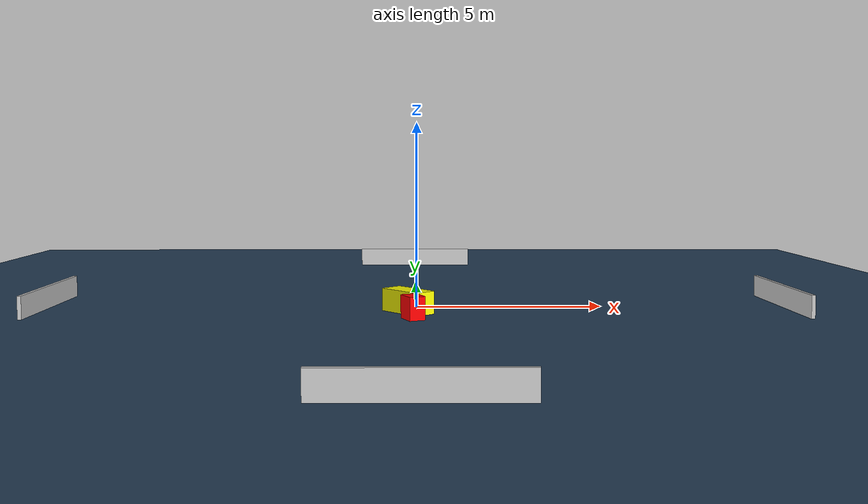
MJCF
<?xml version="1.0" ?>
<mujoco model="generated_environment">
  <option timestep="0.01" integrator="RK4" cone="elliptic"/>
  <default>
    <geom density="1"/>
  </default>
  <asset>
    <texture builtin="gradient" height="3072" name="skybox" rgb1="0.3 0.5 0.7" rgb2="0 0 0" type="skybox" width="512"/>
    <texture builtin="checker" height="300" name="groundplane" rgb1="0.2 0.3 0.4" rgb2="0.1 0.2 0.3" type="2d" width="300"/>
    <material name="groundplane" reflectance="0.2" texrepeat="5 5" texture="groundplane"/>
  </asset>
  <worldbody>
    <light dir="0 0 -1" directional="true" pos="0 0 1.5"/>
    <geom condim="3" friction="0.5 0.005 0.001" material="groundplane" name="floor" pos="0 0 0" size="0 0 0.05" type="plane"/>
    <body name="walls">
      <geom name="wall_1" condim="4" pos="-10.0 0.0 0.3" rgba="0.800000011920929 0.800000011920929 0.800000011920929 1.0" size="0.05 2.0 0.3" type="box"/>
      <geom name="wall_2" condim="4" pos="10.0 0.0 0.3" rgba="0.800000011920929 0.800000011920929 0.800000011920929 1.0" size="0.05 2.0 0.3" type="box"/>
      <geom name="wall_3" condim="4" pos="0.0 -10.0 0.3" rgba="0.800000011920929 0.800000011920929 0.800000011920929 1.0" size="2.0 0.05 0.3" type="box"/>
      <geom name="wall_4" condim="4" pos="0.0 10.0 0.3" rgba="0.800000011920929 0.800000011920929 0.800000011920929 1.0" size="2.0 0.05 0.3" type="box"/>
    </body>
    <body name="robot">
      <joint name="joint_x" type="slide" pos="0 0 0" axis="1 0 0"/>
      <joint name="joint_y" type="slide" pos="0 0 0" axis="0 1 0"/>
      <geom name="robot" type="cylinder" pos="0.0 0.0 0.2" size="0.2 0.2 0.0" mass="5.0" friction="1.0 0.005 0.0001" condim="4" rgba="1.0 1.0 0.0 1.0"/>
    </body>
    <body name="obstacle_1_movable">
      <geom name="obstacle_1_movable" condim="4" pos="-0.23937339376086578 -0.8797095495625684 0.3" euler="0 0 132.8297046812962" friction="0.0 0.005 0.001" rgba="1.0 1.0 0.0 1.0" size="0.6713589335837159 0.31182053708703034 0.3" type="box" mass="0.1"/>
      <joint type="free"/>
    </body>
    <body name="obstacle_2_static">
      <geom name="obstacle_2_static" condim="4" pos="-0.1120570568646305 -1.9332040530512338 0.3" euler="0 0 23.427407174926774" friction="0.0 0.005 0.001" rgba="1.0 0.0 0.0 1.0" size="0.2153477066717515 0.2848023320700539 0.3" type="box"/>
    </body>
  </worldbody>
  <actuator>
    <motor name="actuator_x" joint="joint_x" gear="1" ctrlrange="-1 1"/>
    <motor name="actuator_y" joint="joint_y" gear="1" ctrlrange="-1 1"/>
  </actuator>
</mujoco>
